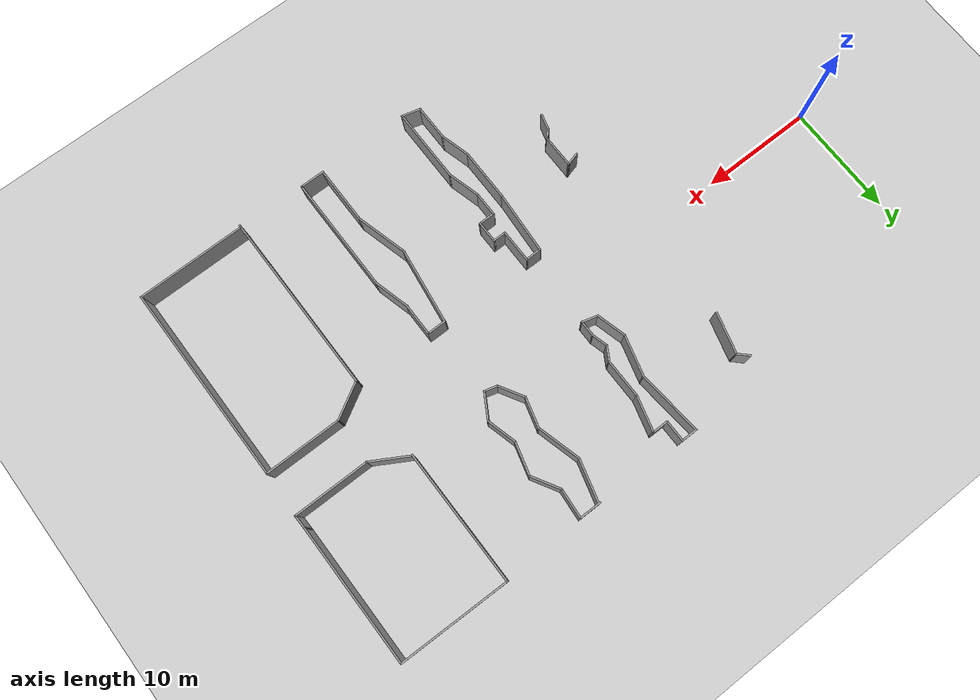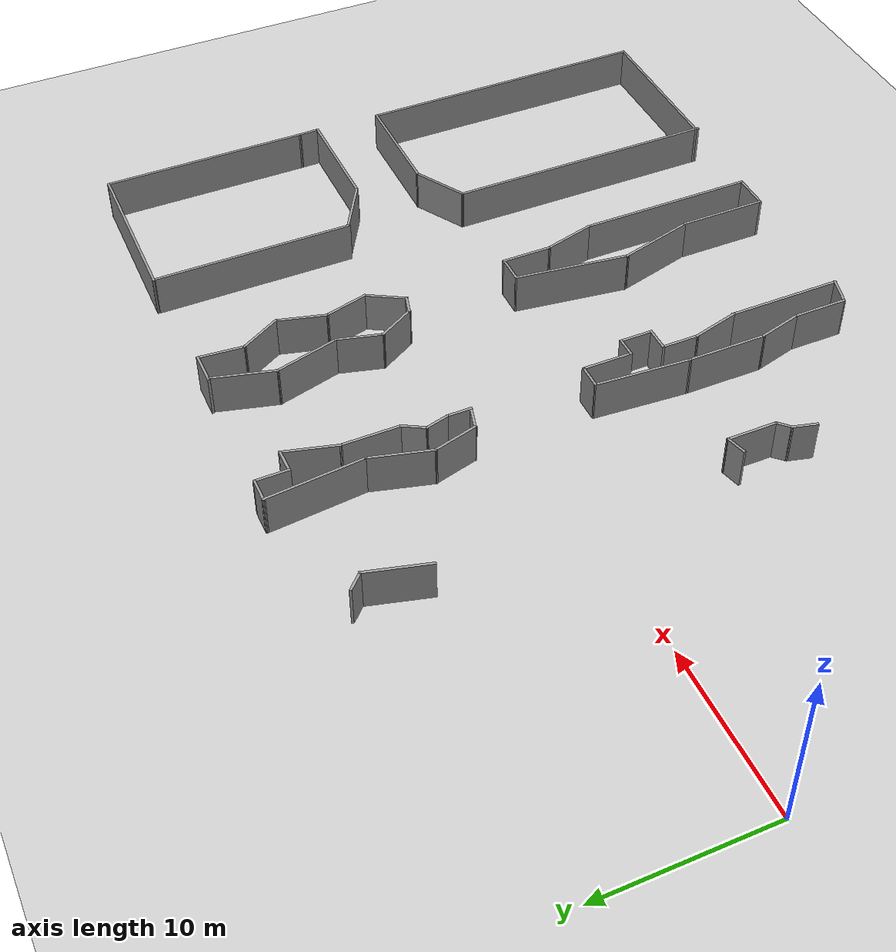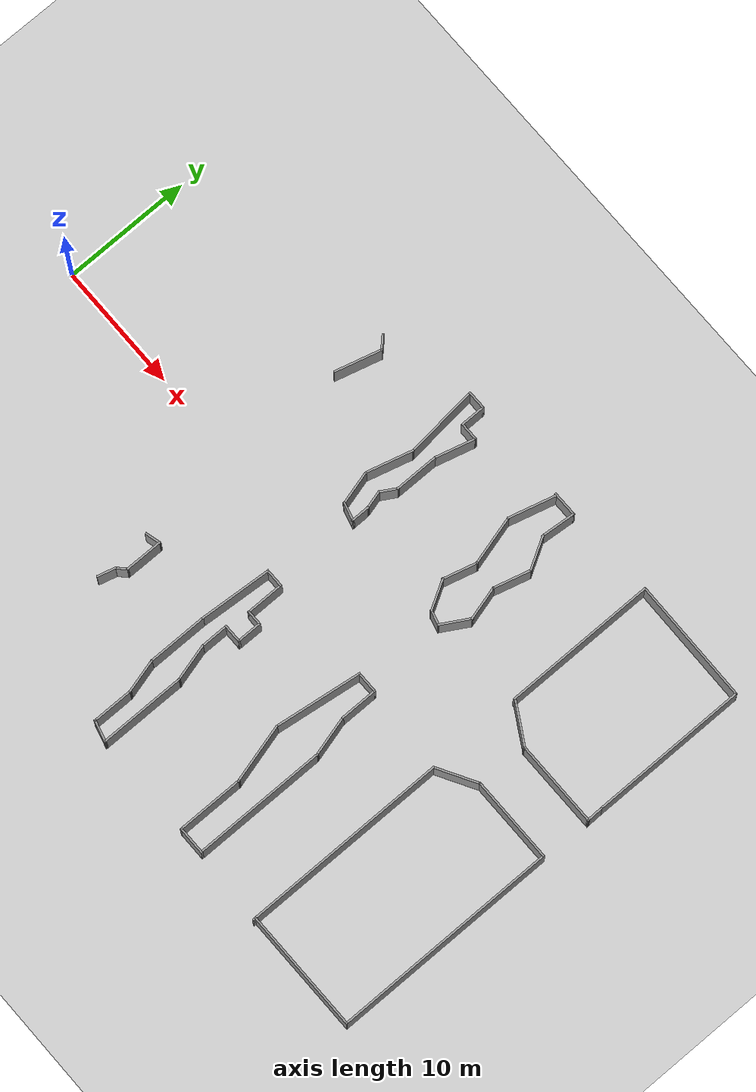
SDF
<sdf version="1.6">
 <world name="default">
  <model name="ground_plane">
   <static>1</static>
   <link name="link">
    <collision name="collision">
     <geometry><plane><normal>0 0 1</normal><size>100 100</size></plane></geometry>
     <surface><friction><ode><mu>100</mu><mu2>50</mu2></ode></friction></surface>
    </collision>
    <visual name="visual">
     <cast_shadows>0</cast_shadows>
     <geometry><plane><normal>0 0 1</normal><size>100 100</size></plane></geometry>
     <material>
      <script><uri>file://media/materials/scripts/gazebo.material</uri><name>Gazebo/Grey</name></script>
     </material>
    </visual>
   </link>
  </model>
  <model name="supermarket">
   <pose>25.0605 -2.27607 0 0 -0 0</pose>
   <link name="Wall_100">
    <collision name="Wall_100_Collision">
     <geometry><box><size>1.5 0.15 2.5</size></box></geometry>
     <pose>0 0 1.25 0 -0 0</pose>
    </collision>
    <visual name="Wall_100_Visual">
     <pose>0 0 1.25 0 -0 0</pose>
     <geometry><box><size>1.5 0.15 2.5</size></box></geometry>
     <material>
      <script><uri>file://media/materials/scripts/gazebo.material</uri><name>Gazebo/Grey</name></script>
      <ambient>1 1 1 1</ambient>
     </material>
     <meta><layer>0</layer></meta>
    </visual>
    <pose>2.20267 -6.05084 0 0 -0 3.14159</pose>
   </link>
   <link name="Wall_101">
    <collision name="Wall_101_Collision">
     <geometry><box><size>2.25 0.15 2.5</size></box></geometry>
     <pose>0 0 1.25 0 -0 0</pose>
    </collision>
    <visual name="Wall_101_Visual">
     <pose>0 0 1.25 0 -0 0</pose>
     <geometry><box><size>2.25 0.15 2.5</size></box></geometry>
     <material>
      <script><uri>file://media/materials/scripts/gazebo.material</uri><name>Gazebo/Grey</name></script>
      <ambient>1 1 1 1</ambient>
     </material>
     <meta><layer>0</layer></meta>
    </visual>
    <pose>1.52767 -7.10084 0 0 0 -1.5708</pose>
   </link>
   <link name="Wall_102">
    <collision name="Wall_102_Collision">
     <geometry><box><size>3 0.15 2.5</size></box></geometry>
     <pose>0 0 1.25 0 -0 0</pose>
    </collision>
    <visual name="Wall_102_Visual">
     <pose>0 0 1.25 0 -0 0</pose>
     <geometry><box><size>3 0.15 2.5</size></box></geometry>
     <material>
      <script><uri>file://media/materials/scripts/gazebo.material</uri><name>Gazebo/Grey</name></script>
      <ambient>1 1 1 1</ambient>
     </material>
     <meta><layer>0</layer></meta>
    </visual>
    <pose>1.89649 -9.52728 0 0 0 -1.309</pose>
   </link>
   <link name="Wall_103">
    <collision name="Wall_103_Collision">
     <geometry><box><size>6.75 0.15 2.5</size></box></geometry>
     <pose>0 0 1.25 0 -0 0</pose>
    </collision>
    <visual name="Wall_103_Visual">
     <pose>0 0 1.25 0 -0 0</pose>
     <geometry><box><size>6.75 0.15 2.5</size></box></geometry>
     <material>
      <script><uri>file://media/materials/scripts/gazebo.material</uri><name>Gazebo/Grey</name></script>
      <ambient>1 1 1 1</ambient>
     </material>
     <meta><layer>0</layer></meta>
    </visual>
    <pose>2.26531 -14.2037 0 0 0 -1.5708</pose>
   </link>
   <link name="Wall_104">
    <collision name="Wall_104_Collision">
     <geometry><box><size>1.75 0.15 2.5</size></box></geometry>
     <pose>0 0 1.25 0 -0 0</pose>
    </collision>
    <visual name="Wall_104_Visual">
     <pose>0 0 1.25 0 -0 0</pose>
     <geometry><box><size>1.75 0.15 2.5</size></box></geometry>
     <material>
      <script><uri>file://media/materials/scripts/gazebo.material</uri><name>Gazebo/Grey</name></script>
      <ambient>1 1 1 1</ambient>
     </material>
     <meta><layer>0</layer></meta>
    </visual>
    <pose>1.49256 -17.2967 0 0 -0 2.87979</pose>
   </link>
   <link name="Wall_105">
    <collision name="Wall_105_Collision">
     <geometry><box><size>3.25 0.15 2.5</size></box></geometry>
     <pose>0 0 1.25 0 -0 0</pose>
    </collision>
    <visual name="Wall_105_Visual">
     <pose>0 0 1.25 0 -0 0</pose>
     <geometry><box><size>3.25 0.15 2.5</size></box></geometry>
     <material>
      <script><uri>file://media/materials/scripts/gazebo.material</uri><name>Gazebo/Grey</name></script>
      <ambient>1 1 1 1</ambient>
     </material>
     <meta><layer>0</layer></meta>
    </visual>
    <pose>0.719824 -15.5396 0 0 -0 1.5708</pose>
   </link>
   <link name="Wall_106">
    <collision name="Wall_106_Collision">
     <geometry><box><size>2.75 0.15 2.5</size></box></geometry>
     <pose>0 0 1.25 0 -0 0</pose>
    </collision>
    <visual name="Wall_106_Visual">
     <pose>0 0 1.25 0 -0 0</pose>
     <geometry><box><size>2.75 0.15 2.5</size></box></geometry>
     <material>
      <script><uri>file://media/materials/scripts/gazebo.material</uri><name>Gazebo/Grey</name></script>
      <ambient>1 1 1 1</ambient>
     </material>
     <meta><layer>0</layer></meta>
    </visual>
    <pose>0.383359 -12.7339 0 0 -0 1.8326</pose>
   </link>
   <link name="Wall_107">
    <collision name="Wall_107_Collision">
     <geometry><box><size>4.75 0.15 2.5</size></box></geometry>
     <pose>0 0 1.25 0 -0 0</pose>
    </collision>
    <visual name="Wall_107_Visual">
     <pose>0 0 1.25 0 -0 0</pose>
     <geometry><box><size>4.75 0.15 2.5</size></box></geometry>
     <material>
      <script><uri>file://media/materials/scripts/gazebo.material</uri><name>Gazebo/Grey</name></script>
      <ambient>1 1 1 1</ambient>
     </material>
     <meta><layer>0</layer></meta>
    </visual>
    <pose>0.046895 -9.17821 0 0 -0 1.5708</pose>
   </link>
   <link name="Wall_108">
    <collision name="Wall_108_Collision">
     <geometry><box><size>5.69047 0.15 2.5</size></box></geometry>
     <pose>0 0 1.25 0 -0 0</pose>
    </collision>
    <visual name="Wall_108_Visual">
     <pose>0 0 1.25 0 -0 0</pose>
     <geometry><box><size>5.69047 0.15 2.5</size></box></geometry>
     <material>
      <script><uri>file://media/materials/scripts/gazebo.material</uri><name>Gazebo/Grey</name></script>
      <ambient>1 1 1 1</ambient>
     </material>
     <meta><layer>0</layer></meta>
    </visual>
    <pose>0.237283 -4.11452 0 0 -0 1.50202</pose>
   </link>
   <link name="Wall_112">
    <collision name="Wall_112_Collision">
     <geometry><box><size>2 0.15 2.5</size></box></geometry>
     <pose>0 0 1.25 0 -0 0</pose>
    </collision>
    <visual name="Wall_112_Visual">
     <pose>0 0 1.25 0 -0 0</pose>
     <geometry><box><size>2 0.15 2.5</size></box></geometry>
     <material>
      <script><uri>file://media/materials/scripts/gazebo.material</uri><name>Gazebo/Grey</name></script>
      <ambient>1 1 1 1</ambient>
     </material>
     <meta><layer>0</layer></meta>
    </visual>
    <pose>10.1554 17.2151 0 0 -0 0</pose>
   </link>
   <link name="Wall_113">
    <collision name="Wall_113_Collision">
     <geometry><box><size>2.68973 0.15 2.5</size></box></geometry>
     <pose>0 0 1.25 0 -0 0</pose>
    </collision>
    <visual name="Wall_113_Visual">
     <pose>0 0 1.25 0 -0 0</pose>
     <geometry><box><size>2.68973 0.15 2.5</size></box></geometry>
     <material>
      <script><uri>file://media/materials/scripts/gazebo.material</uri><name>Gazebo/Grey</name></script>
      <ambient>1 1 1 1</ambient>
     </material>
     <meta><layer>0</layer></meta>
    </visual>
    <pose>10.974 15.8965 0 0 0 -1.65468</pose>
   </link>
   <link name="Wall_114">
    <collision name="Wall_114_Collision">
     <geometry><box><size>2.75 0.15 2.5</size></box></geometry>
     <pose>0 0 1.25 0 -0 0</pose>
    </collision>
    <visual name="Wall_114_Visual">
     <pose>0 0 1.25 0 -0 0</pose>
     <geometry><box><size>2.75 0.15 2.5</size></box></geometry>
     <material>
      <script><uri>file://media/materials/scripts/gazebo.material</uri><name>Gazebo/Grey</name></script>
      <ambient>1 1 1 1</ambient>
     </material>
     <meta><layer>0</layer></meta>
    </visual>
    <pose>11.5176 13.5053 0 0 0 -1.0472</pose>
   </link>
   <link name="Wall_115">
    <collision name="Wall_115_Collision">
     <geometry><box><size>3 0.15 2.5</size></box></geometry>
     <pose>0 0 1.25 0 -0 0</pose>
    </collision>
    <visual name="Wall_115_Visual">
     <pose>0 0 1.25 0 -0 0</pose>
     <geometry><box><size>3 0.15 2.5</size></box></geometry>
     <material>
      <script><uri>file://media/materials/scripts/gazebo.material</uri><name>Gazebo/Grey</name></script>
      <ambient>1 1 1 1</ambient>
     </material>
     <meta><layer>0</layer></meta>
    </visual>
    <pose>11.7988 11.003 0 0 0 -1.8326</pose>
   </link>
   <link name="Wall_116">
    <collision name="Wall_116_Collision">
     <geometry><box><size>2.75 0.15 2.5</size></box></geometry>
     <pose>0 0 1.25 0 -0 0</pose>
    </collision>
    <visual name="Wall_116_Visual">
     <pose>0 0 1.25 0 -0 0</pose>
     <geometry><box><size>2.75 0.15 2.5</size></box></geometry>
     <material>
      <script><uri>file://media/materials/scripts/gazebo.material</uri><name>Gazebo/Grey</name></script>
      <ambient>1 1 1 1</ambient>
     </material>
     <meta><layer>0</layer></meta>
    </visual>
    <pose>11.7664 8.37086 0 0 0 -1.309</pose>
   </link>
   <link name="Wall_117">
    <collision name="Wall_117_Collision">
     <geometry><box><size>2.5 0.15 2.5</size></box></geometry>
     <pose>0 0 1.25 0 -0 0</pose>
    </collision>
    <visual name="Wall_117_Visual">
     <pose>0 0 1.25 0 -0 0</pose>
     <geometry><box><size>2.5 0.15 2.5</size></box></geometry>
     <material>
      <script><uri>file://media/materials/scripts/gazebo.material</uri><name>Gazebo/Grey</name></script>
      <ambient>1 1 1 1</ambient>
     </material>
     <meta><layer>0</layer></meta>
    </visual>
    <pose>11.5154 6.09758 0 0 0 -2.0944</pose>
   </link>
   <link name="Wall_118">
    <collision name="Wall_118_Collision">
     <geometry><box><size>1.25 0.15 2.5</size></box></geometry>
     <pose>0 0 1.25 0 -0 0</pose>
    </collision>
    <visual name="Wall_118_Visual">
     <pose>0 0 1.25 0 -0 0</pose>
     <geometry><box><size>1.25 0.15 2.5</size></box></geometry>
     <material>
      <script><uri>file://media/materials/scripts/gazebo.material</uri><name>Gazebo/Grey</name></script>
      <ambient>1 1 1 1</ambient>
     </material>
     <meta><layer>0</layer></meta>
    </visual>
    <pose>10.3966 5.22235 0 0 -0 2.87979</pose>
   </link>
   <link name="Wall_119">
    <collision name="Wall_119_Collision">
     <geometry><box><size>2.5 0.15 2.5</size></box></geometry>
     <pose>0 0 1.25 0 -0 0</pose>
    </collision>
    <visual name="Wall_119_Visual">
     <pose>0 0 1.25 0 -0 0</pose>
     <geometry><box><size>2.5 0.15 2.5</size></box></geometry>
     <material>
      <script><uri>file://media/materials/scripts/gazebo.material</uri><name>Gazebo/Grey</name></script>
      <ambient>1 1 1 1</ambient>
     </material>
     <meta><layer>0</layer></meta>
    </visual>
    <pose>9.27785 6.38228 0 0 -0 2.0944</pose>
   </link>
   <link name="Wall_120">
    <collision name="Wall_120_Collision">
     <geometry><box><size>2.75 0.15 2.5</size></box></geometry>
     <pose>0 0 1.25 0 -0 0</pose>
    </collision>
    <visual name="Wall_120_Visual">
     <pose>0 0 1.25 0 -0 0</pose>
     <geometry><box><size>2.75 0.15 2.5</size></box></geometry>
     <material>
      <script><uri>file://media/materials/scripts/gazebo.material</uri><name>Gazebo/Grey</name></script>
      <ambient>1 1 1 1</ambient>
     </material>
     <meta><layer>0</layer></meta>
    </visual>
    <pose>9.02682 8.65556 0 0 -0 1.309</pose>
   </link>
   <link name="Wall_121">
    <collision name="Wall_121_Collision">
     <geometry><box><size>4 0.15 2.5</size></box></geometry>
     <pose>0 0 1.25 0 -0 0</pose>
    </collision>
    <visual name="Wall_121_Visual">
     <pose>0 0 1.25 0 -0 0</pose>
     <geometry><box><size>4 0.15 2.5</size></box></geometry>
     <material>
      <script><uri>file://media/materials/scripts/gazebo.material</uri><name>Gazebo/Grey</name></script>
      <ambient>1 1 1 1</ambient>
     </material>
     <meta><layer>0</layer></meta>
    </visual>
    <pose>8.86506 11.7707 0 0 -0 1.8326</pose>
   </link>
   <link name="Wall_122">
    <collision name="Wall_122_Collision">
     <geometry><box><size>3.75 0.15 2.5</size></box></geometry>
     <pose>0 0 1.25 0 -0 0</pose>
    </collision>
    <visual name="Wall_122_Visual">
     <pose>0 0 1.25 0 -0 0</pose>
     <geometry><box><size>3.75 0.15 2.5</size></box></geometry>
     <material>
      <script><uri>file://media/materials/scripts/gazebo.material</uri><name>Gazebo/Grey</name></script>
      <ambient>1 1 1 1</ambient>
     </material>
     <meta><layer>0</layer></meta>
    </visual>
    <pose>8.83271 15.3687 0 0 -0 1.309</pose>
   </link>
   <link name="Wall_124">
    <collision name="Wall_124_Collision">
     <geometry><box><size>1.75 0.15 2.5</size></box></geometry>
     <pose>0 0 1.25 0 -0 0</pose>
    </collision>
    <visual name="Wall_124_Visual">
     <pose>0 0 1.25 0 -0 0</pose>
     <geometry><box><size>1.75 0.15 2.5</size></box></geometry>
     <material>
      <script><uri>file://media/materials/scripts/gazebo.material</uri><name>Gazebo/Grey</name></script>
      <ambient>1 1 1 1</ambient>
     </material>
     <meta><layer>0</layer></meta>
    </visual>
    <pose>10.7924 -1.2652 0 0 -0 0</pose>
   </link>
   <link name="Wall_125">
    <collision name="Wall_125_Collision">
     <geometry><box><size>3 0.15 2.5</size></box></geometry>
     <pose>0 0 1.25 0 -0 0</pose>
    </collision>
    <visual name="Wall_125_Visual">
     <pose>0 0 1.25 0 -0 0</pose>
     <geometry><box><size>3 0.15 2.5</size></box></geometry>
     <material>
      <script><uri>file://media/materials/scripts/gazebo.material</uri><name>Gazebo/Grey</name></script>
      <ambient>1 1 1 1</ambient>
     </material>
     <meta><layer>0</layer></meta>
    </visual>
    <pose>11.5924 -2.6902 0 0 0 -1.5708</pose>
   </link>
   <link name="Wall_126">
    <collision name="Wall_126_Collision">
     <geometry><box><size>3.25 0.15 2.5</size></box></geometry>
     <pose>0 0 1.25 0 -0 0</pose>
    </collision>
    <visual name="Wall_126_Visual">
     <pose>0 0 1.25 0 -0 0</pose>
     <geometry><box><size>3.25 0.15 2.5</size></box></geometry>
     <material>
      <script><uri>file://media/materials/scripts/gazebo.material</uri><name>Gazebo/Grey</name></script>
      <ambient>1 1 1 1</ambient>
     </material>
     <meta><layer>0</layer></meta>
    </visual>
    <pose>11.9935 -5.61238 0 0 0 -1.309</pose>
   </link>
   <link name="Wall_127">
    <collision name="Wall_127_Collision">
     <geometry><box><size>10.5 0.15 2.5</size></box></geometry>
     <pose>0 0 1.25 0 -0 0</pose>
    </collision>
    <visual name="Wall_127_Visual">
     <pose>0 0 1.25 0 -0 0</pose>
     <geometry><box><size>10.5 0.15 2.5</size></box></geometry>
     <material>
      <script><uri>file://media/materials/scripts/gazebo.material</uri><name>Gazebo/Grey</name></script>
      <ambient>1 1 1 1</ambient>
     </material>
     <meta><layer>0</layer></meta>
    </visual>
    <pose>12.3947 -12.2846 0 0 0 -1.5708</pose>
   </link>
   <link name="Wall_128">
    <collision name="Wall_128_Collision">
     <geometry><box><size>2.25 0.15 2.5</size></box></geometry>
     <pose>0 0 1.25 0 -0 0</pose>
    </collision>
    <visual name="Wall_128_Visual">
     <pose>0 0 1.25 0 -0 0</pose>
     <geometry><box><size>2.25 0.15 2.5</size></box></geometry>
     <material>
      <script><uri>file://media/materials/scripts/gazebo.material</uri><name>Gazebo/Grey</name></script>
      <ambient>1 1 1 1</ambient>
     </material>
     <meta><layer>0</layer></meta>
    </visual>
    <pose>11.3447 -17.4596 0 0 -0 3.14159</pose>
   </link>
   <link name="Wall_129">
    <collision name="Wall_129_Collision">
     <geometry><box><size>5.25 0.15 2.5</size></box></geometry>
     <pose>0 0 1.25 0 -0 0</pose>
    </collision>
    <visual name="Wall_129_Visual">
     <pose>0 0 1.25 0 -0 0</pose>
     <geometry><box><size>5.25 0.15 2.5</size></box></geometry>
     <material>
      <script><uri>file://media/materials/scripts/gazebo.material</uri><name>Gazebo/Grey</name></script>
      <ambient>1 1 1 1</ambient>
     </material>
     <meta><layer>0</layer></meta>
    </visual>
    <pose>10.2947 -14.9096 0 0 -0 1.5708</pose>
   </link>
   <link name="Wall_130">
    <collision name="Wall_130_Collision">
     <geometry><box><size>4.75 0.15 2.5</size></box></geometry>
     <pose>0 0 1.25 0 -0 0</pose>
    </collision>
    <visual name="Wall_130_Visual">
     <pose>0 0 1.25 0 -0 0</pose>
     <geometry><box><size>4.75 0.15 2.5</size></box></geometry>
     <material>
      <script><uri>file://media/materials/scripts/gazebo.material</uri><name>Gazebo/Grey</name></script>
      <ambient>1 1 1 1</ambient>
     </material>
     <meta><layer>0</layer></meta>
    </visual>
    <pose>9.69942 -10.1379 0 0 -0 1.8326</pose>
   </link>
   <link name="Wall_131">
    <collision name="Wall_131_Collision">
     <geometry><box><size>6.86016 0.15 2.5</size></box></geometry>
     <pose>0 0 1.25 0 -0 0</pose>
    </collision>
    <visual name="Wall_131_Visual">
     <pose>0 0 1.25 0 -0 0</pose>
     <geometry><box><size>6.86016 0.15 2.5</size></box></geometry>
     <material>
      <script><uri>file://media/materials/scripts/gazebo.material</uri><name>Gazebo/Grey</name></script>
      <ambient>1 1 1 1</ambient>
     </material>
     <meta><layer>0</layer></meta>
    </visual>
    <pose>9.54825 -4.59075 0 0 -0 1.43804</pose>
   </link>
   <link name="Wall_135">
    <collision name="Wall_135_Collision">
     <geometry><box><size>12.3776 0.15 2.5</size></box></geometry>
     <pose>0 0 1.25 0 -0 0</pose>
    </collision>
    <visual name="Wall_135_Visual">
     <pose>0 0 1.25 0 -0 0</pose>
     <geometry><box><size>12.3776 0.15 2.5</size></box></geometry>
     <material>
      <script><uri>file://media/materials/scripts/gazebo.material</uri><name>Gazebo/Grey</name></script>
      <ambient>1 1 1 1</ambient>
     </material>
     <meta><layer>0</layer></meta>
    </visual>
    <pose>27.8396 11.2672 0 0 -0 1.5708</pose>
   </link>
   <link name="Wall_136">
    <collision name="Wall_136_Collision">
     <geometry><box><size>9.75 0.15 2.5</size></box></geometry>
     <pose>0 0 1.25 0 -0 0</pose>
    </collision>
    <visual name="Wall_136_Visual">
     <pose>0 0 1.25 0 -0 0</pose>
     <geometry><box><size>9.75 0.15 2.5</size></box></geometry>
     <material>
      <script><uri>file://media/materials/scripts/gazebo.material</uri><name>Gazebo/Grey</name></script>
      <ambient>1 1 1 1</ambient>
     </material>
     <meta><layer>0</layer></meta>
    </visual>
    <pose>23.0396 17.4422 0 0 -0 3.12885</pose>
   </link>
   <link name="Wall_140">
    <collision name="Wall_140_Collision">
     <geometry><box><size>3.5 0.15 2.5</size></box></geometry>
     <pose>0 0 1.25 0 -0 0</pose>
    </collision>
    <visual name="Wall_140_Visual">
     <pose>0 0 1.25 0 -0 0</pose>
     <geometry><box><size>3.5 0.15 2.5</size></box></geometry>
     <material>
      <script><uri>file://media/materials/scripts/gazebo.material</uri><name>Gazebo/Grey</name></script>
      <ambient>1 1 1 1</ambient>
     </material>
     <meta><layer>0</layer></meta>
    </visual>
    <pose>19.8164 4.79323 0 0 0 -0.523599</pose>
   </link>
   <link name="Wall_141">
    <collision name="Wall_141_Collision">
     <geometry><box><size>6.75 0.15 2.5</size></box></geometry>
     <pose>0 0 1.25 0 -0 0</pose>
    </collision>
    <visual name="Wall_141_Visual">
     <pose>0 0 1.25 0 -0 0</pose>
     <geometry><box><size>6.75 0.15 2.5</size></box></geometry>
     <material>
      <script><uri>file://media/materials/scripts/gazebo.material</uri><name>Gazebo/Grey</name></script>
      <ambient>1 1 1 1</ambient>
     </material>
     <meta><layer>0</layer></meta>
    </visual>
    <pose>24.567 3.95573 0 0 -0 0</pose>
   </link>
   <link name="Wall_142">
    <collision name="Wall_142_Collision">
     <geometry><box><size>1.348 0.15 2.5</size></box></geometry>
     <pose>0 0 1.25 0 -0 0</pose>
    </collision>
    <visual name="Wall_142_Visual">
     <pose>0 0 1.25 0 -0 0</pose>
     <geometry><box><size>1.348 0.15 2.5</size></box></geometry>
     <material>
      <script><uri>file://media/materials/scripts/gazebo.material</uri><name>Gazebo/Grey</name></script>
      <ambient>1 1 1 1</ambient>
     </material>
     <meta><layer>0</layer></meta>
    </visual>
    <pose>27.8533 4.55457 0 0 -0 1.59368</pose>
   </link>
   <link name="Wall_144">
    <collision name="Wall_144_Collision">
     <geometry><box><size>3.5 0.15 2.5</size></box></geometry>
     <pose>0 0 1.25 0 -0 0</pose>
    </collision>
    <visual name="Wall_144_Visual">
     <pose>0 0 1.25 0 -0 0</pose>
     <geometry><box><size>3.5 0.15 2.5</size></box></geometry>
     <material>
      <script><uri>file://media/materials/scripts/gazebo.material</uri><name>Gazebo/Grey</name></script>
      <ambient>1 1 1 1</ambient>
     </material>
     <meta><layer>0</layer></meta>
    </visual>
    <pose>19.6941 -0.812247 0 0 -0 0.523599</pose>
   </link>
   <link name="Wall_145">
    <collision name="Wall_145_Collision">
     <geometry><box><size>6.75 0.15 2.5</size></box></geometry>
     <pose>0 0 1.25 0 -0 0</pose>
    </collision>
    <visual name="Wall_145_Visual">
     <pose>0 0 1.25 0 -0 0</pose>
     <geometry><box><size>6.75 0.15 2.5</size></box></geometry>
     <material>
      <script><uri>file://media/materials/scripts/gazebo.material</uri><name>Gazebo/Grey</name></script>
      <ambient>1 1 1 1</ambient>
     </material>
     <meta><layer>0</layer></meta>
    </visual>
    <pose>24.4447 0.025253 0 0 -0 0</pose>
   </link>
   <link name="Wall_146">
    <collision name="Wall_146_Collision">
     <geometry><box><size>17.75 0.15 2.5</size></box></geometry>
     <pose>0 0 1.25 0 -0 0</pose>
    </collision>
    <visual name="Wall_146_Visual">
     <pose>0 0 1.25 0 -0 0</pose>
     <geometry><box><size>17.75 0.15 2.5</size></box></geometry>
     <material>
      <script><uri>file://media/materials/scripts/gazebo.material</uri><name>Gazebo/Grey</name></script>
      <ambient>1 1 1 1</ambient>
     </material>
     <meta><layer>0</layer></meta>
    </visual>
    <pose>27.7447 -8.77475 0 0 0 -1.5708</pose>
   </link>
   <link name="Wall_147">
    <collision name="Wall_147_Collision">
     <geometry><box><size>9.65508 0.15 2.5</size></box></geometry>
     <pose>0 0 1.25 0 -0 0</pose>
    </collision>
    <visual name="Wall_147_Visual">
     <pose>0 0 1.25 0 -0 0</pose>
     <geometry><box><size>9.65508 0.15 2.5</size></box></geometry>
     <material>
      <script><uri>file://media/materials/scripts/gazebo.material</uri><name>Gazebo/Grey</name></script>
      <ambient>1 1 1 1</ambient>
     </material>
     <meta><layer>0</layer></meta>
    </visual>
    <pose>22.9921 -17.5857 0 0 0 -3.1393</pose>
   </link>
   <link name="Wall_149">
    <collision name="Wall_149_Collision">
     <geometry><box><size>12 0.15 2.5</size></box></geometry>
     <pose>0 0 1.25 0 -0 0</pose>
    </collision>
    <visual name="Wall_149_Visual">
     <pose>0 0 1.25 0 -0 0</pose>
     <geometry><box><size>12 0.15 2.5</size></box></geometry>
     <material>
      <script><uri>file://media/materials/scripts/gazebo.material</uri><name>Gazebo/Grey</name></script>
      <ambient>1 1 1 1</ambient>
     </material>
     <meta><layer>0</layer></meta>
    </visual>
    <pose>18.2396 11.5784 0 0 0 -1.5708</pose>
   </link>
   <link name="Wall_151">
    <collision name="Wall_151_Collision">
     <geometry><box><size>16.25 0.15 2.5</size></box></geometry>
     <pose>0 0 1.25 0 -0 0</pose>
    </collision>
    <visual name="Wall_151_Visual">
     <pose>0 0 1.25 0 -0 0</pose>
     <geometry><box><size>16.25 0.15 2.5</size></box></geometry>
     <material>
      <script><uri>file://media/materials/scripts/gazebo.material</uri><name>Gazebo/Grey</name></script>
      <ambient>1 1 1 1</ambient>
     </material>
     <meta><layer>0</layer></meta>
    </visual>
    <pose>18.2435 -9.69975 0 0 0 -1.5708</pose>
   </link>
   <link name="Wall_19">
    <collision name="Wall_19_Collision">
     <geometry><box><size>1.25 0.15 2.5</size></box></geometry>
     <pose>0 0 1.25 0 -0 0</pose>
    </collision>
    <visual name="Wall_19_Visual">
     <pose>0 0 1.25 0 -0 0</pose>
     <geometry><box><size>1.25 0.15 2.5</size></box></geometry>
     <material>
      <script><uri>file://media/materials/scripts/gazebo.material</uri><name>Gazebo/Grey</name></script>
      <ambient>1 1 1 1</ambient>
     </material>
     <meta><layer>0</layer></meta>
    </visual>
    <pose>-6.77902 15.174 0 0 0 -0.785398</pose>
   </link>
   <link name="Wall_20">
    <collision name="Wall_20_Collision">
     <geometry><box><size>3.75 0.15 2.5</size></box></geometry>
     <pose>0 0 1.25 0 -0 0</pose>
    </collision>
    <visual name="Wall_20_Visual">
     <pose>0 0 1.25 0 -0 0</pose>
     <geometry><box><size>3.75 0.15 2.5</size></box></geometry>
     <material>
      <script><uri>file://media/materials/scripts/gazebo.material</uri><name>Gazebo/Grey</name></script>
      <ambient>1 1 1 1</ambient>
     </material>
     <meta><layer>0</layer></meta>
    </visual>
    <pose>-6.85598 13.0464 0 0 0 -1.8326</pose>
   </link>
   <link name="Wall_71">
    <collision name="Wall_71_Collision">
     <geometry><box><size>1.25 0.15 2.5</size></box></geometry>
     <pose>0 0 1.25 0 -0 0</pose>
    </collision>
    <visual name="Wall_71_Visual">
     <pose>0 0 1.25 0 -0 0</pose>
     <geometry><box><size>1.25 0.15 2.5</size></box></geometry>
     <material>
      <script><uri>file://media/materials/scripts/gazebo.material</uri><name>Gazebo/Grey</name></script>
      <ambient>1 1 1 1</ambient>
     </material>
     <meta><layer>0</layer></meta>
    </visual>
    <pose>-6.48059 -5.86322 0 0 -0 0.261799</pose>
   </link>
   <link name="Wall_72">
    <collision name="Wall_72_Collision">
     <geometry><box><size>3 0.15 2.5</size></box></geometry>
     <pose>0 0 1.25 0 -0 0</pose>
    </collision>
    <visual name="Wall_72_Visual">
     <pose>0 0 1.25 0 -0 0</pose>
     <geometry><box><size>3 0.15 2.5</size></box></geometry>
     <material>
      <script><uri>file://media/materials/scripts/gazebo.material</uri><name>Gazebo/Grey</name></script>
      <ambient>1 1 1 1</ambient>
     </material>
     <meta><layer>0</layer></meta>
    </visual>
    <pose>-5.94933 -7.14587 0 0 0 -1.5708</pose>
   </link>
   <link name="Wall_73">
    <collision name="Wall_73_Collision">
     <geometry><box><size>1 0.15 2.5</size></box></geometry>
     <pose>0 0 1.25 0 -0 0</pose>
    </collision>
    <visual name="Wall_73_Visual">
     <pose>0 0 1.25 0 -0 0</pose>
     <geometry><box><size>1 0.15 2.5</size></box></geometry>
     <material>
      <script><uri>file://media/materials/scripts/gazebo.material</uri><name>Gazebo/Grey</name></script>
      <ambient>1 1 1 1</ambient>
     </material>
     <meta><layer>0</layer></meta>
    </visual>
    <pose>-6.24986 -8.87139 0 0 0 -2.35619</pose>
   </link>
   <link name="Wall_74">
    <collision name="Wall_74_Collision">
     <geometry><box><size>1.5 0.15 2.5</size></box></geometry>
     <pose>0 0 1.25 0 -0 0</pose>
    </collision>
    <visual name="Wall_74_Visual">
     <pose>0 0 1.25 0 -0 0</pose>
     <geometry><box><size>1.5 0.15 2.5</size></box></geometry>
     <material>
      <script><uri>file://media/materials/scripts/gazebo.material</uri><name>Gazebo/Grey</name></script>
      <ambient>1 1 1 1</ambient>
     </material>
     <meta><layer>0</layer></meta>
    </visual>
    <pose>-6.72508 -9.82391 0 0 0 -1.8326</pose>
   </link>
   <link name="Wall_82">
    <collision name="Wall_82_Collision">
     <geometry><box><size>1.5 0.15 2.5</size></box></geometry>
     <pose>0 0 1.25 0 -0 0</pose>
    </collision>
    <visual name="Wall_82_Visual">
     <pose>0 0 1.25 0 -0 0</pose>
     <geometry><box><size>1.5 0.15 2.5</size></box></geometry>
     <material>
      <script><uri>file://media/materials/scripts/gazebo.material</uri><name>Gazebo/Grey</name></script>
      <ambient>1 1 1 1</ambient>
     </material>
     <meta><layer>0</layer></meta>
    </visual>
    <pose>0.617204 17.4205 0 0 -0 0</pose>
   </link>
   <link name="Wall_83">
    <collision name="Wall_83_Collision">
     <geometry><box><size>2 0.15 2.5</size></box></geometry>
     <pose>0 0 1.25 0 -0 0</pose>
    </collision>
    <visual name="Wall_83_Visual">
     <pose>0 0 1.25 0 -0 0</pose>
     <geometry><box><size>2 0.15 2.5</size></box></geometry>
     <material>
      <script><uri>file://media/materials/scripts/gazebo.material</uri><name>Gazebo/Grey</name></script>
      <ambient>1 1 1 1</ambient>
     </material>
     <meta><layer>0</layer></meta>
    </visual>
    <pose>1.2922 16.4956 0 0 0 -1.5708</pose>
   </link>
   <link name="Wall_84">
    <collision name="Wall_84_Collision">
     <geometry><box><size>1.5 0.15 2.5</size></box></geometry>
     <pose>0 0 1.25 0 -0 0</pose>
    </collision>
    <visual name="Wall_84_Visual">
     <pose>0 0 1.25 0 -0 0</pose>
     <geometry><box><size>1.5 0.15 2.5</size></box></geometry>
     <material>
      <script><uri>file://media/materials/scripts/gazebo.material</uri><name>Gazebo/Grey</name></script>
      <ambient>1 1 1 1</ambient>
     </material>
     <meta><layer>0</layer></meta>
    </visual>
    <pose>1.96721 15.5705 0 0 -0 0</pose>
   </link>
   <link name="Wall_85">
    <collision name="Wall_85_Collision">
     <geometry><box><size>3.25 0.15 2.5</size></box></geometry>
     <pose>0 0 1.25 0 -0 0</pose>
    </collision>
    <visual name="Wall_85_Visual">
     <pose>0 0 1.25 0 -0 0</pose>
     <geometry><box><size>3.25 0.15 2.5</size></box></geometry>
     <material>
      <script><uri>file://media/materials/scripts/gazebo.material</uri><name>Gazebo/Grey</name></script>
      <ambient>1 1 1 1</ambient>
     </material>
     <meta><layer>0</layer></meta>
    </visual>
    <pose>2.24104 14.0734 0 0 0 -1.8326</pose>
   </link>
   <link name="Wall_86">
    <collision name="Wall_86_Collision">
     <geometry><box><size>3.5 0.15 2.5</size></box></geometry>
     <pose>0 0 1.25 0 -0 0</pose>
    </collision>
    <visual name="Wall_86_Visual">
     <pose>0 0 1.25 0 -0 0</pose>
     <geometry><box><size>3.5 0.15 2.5</size></box></geometry>
     <material>
      <script><uri>file://media/materials/scripts/gazebo.material</uri><name>Gazebo/Grey</name></script>
      <ambient>1 1 1 1</ambient>
     </material>
     <meta><layer>0</layer></meta>
    </visual>
    <pose>1.83987 10.9012 0 0 0 -1.5708</pose>
   </link>
   <link name="Wall_87">
    <collision name="Wall_87_Collision">
     <geometry><box><size>1.5 0.15 2.5</size></box></geometry>
     <pose>0 0 1.25 0 -0 0</pose>
    </collision>
    <visual name="Wall_87_Visual">
     <pose>0 0 1.25 0 -0 0</pose>
     <geometry><box><size>1.5 0.15 2.5</size></box></geometry>
     <material>
      <script><uri>file://media/materials/scripts/gazebo.material</uri><name>Gazebo/Grey</name></script>
      <ambient>1 1 1 1</ambient>
     </material>
     <meta><layer>0</layer></meta>
    </visual>
    <pose>1.50237 8.64161 0 0 0 -2.0944</pose>
   </link>
   <link name="Wall_88">
    <collision name="Wall_88_Collision">
     <geometry><box><size>1.5 0.15 2.5</size></box></geometry>
     <pose>0 0 1.25 0 -0 0</pose>
    </collision>
    <visual name="Wall_88_Visual">
     <pose>0 0 1.25 0 -0 0</pose>
     <geometry><box><size>1.5 0.15 2.5</size></box></geometry>
     <material>
      <script><uri>file://media/materials/scripts/gazebo.material</uri><name>Gazebo/Grey</name></script>
      <ambient>1 1 1 1</ambient>
     </material>
     <meta><layer>0</layer></meta>
    </visual>
    <pose>1.33957 7.40505 0 0 0 -1.309</pose>
   </link>
   <link name="Wall_89">
    <collision name="Wall_89_Collision">
     <geometry><box><size>1.5 0.15 2.5</size></box></geometry>
     <pose>0 0 1.25 0 -0 0</pose>
    </collision>
    <visual name="Wall_89_Visual">
     <pose>0 0 1.25 0 -0 0</pose>
     <geometry><box><size>1.5 0.15 2.5</size></box></geometry>
     <material>
      <script><uri>file://media/materials/scripts/gazebo.material</uri><name>Gazebo/Grey</name></script>
      <ambient>1 1 1 1</ambient>
     </material>
     <meta><layer>0</layer></meta>
    </visual>
    <pose>1.51427 6.07805 0 0 0 -1.5708</pose>
   </link>
   <link name="Wall_90">
    <collision name="Wall_90_Collision">
     <geometry><box><size>1.5 0.15 2.5</size></box></geometry>
     <pose>0 0 1.25 0 -0 0</pose>
    </collision>
    <visual name="Wall_90_Visual">
     <pose>0 0 1.25 0 -0 0</pose>
     <geometry><box><size>1.5 0.15 2.5</size></box></geometry>
     <material>
      <script><uri>file://media/materials/scripts/gazebo.material</uri><name>Gazebo/Grey</name></script>
      <ambient>1 1 1 1</ambient>
     </material>
     <meta><layer>0</layer></meta>
    </visual>
    <pose>0.862271 5.57775 0 0 -0 2.87979</pose>
   </link>
   <link name="Wall_91">
    <collision name="Wall_91_Collision">
     <geometry><box><size>2.75 0.15 2.5</size></box></geometry>
     <pose>0 0 1.25 0 -0 0</pose>
    </collision>
    <visual name="Wall_91_Visual">
     <pose>0 0 1.25 0 -0 0</pose>
     <geometry><box><size>2.75 0.15 2.5</size></box></geometry>
     <material>
      <script><uri>file://media/materials/scripts/gazebo.material</uri><name>Gazebo/Grey</name></script>
      <ambient>1 1 1 1</ambient>
     </material>
     <meta><layer>0</layer></meta>
    </visual>
    <pose>-0.126194 7.00816 0 0 -0 1.8326</pose>
   </link>
   <link name="Wall_92">
    <collision name="Wall_92_Collision">
     <geometry><box><size>3.75 0.15 2.5</size></box></geometry>
     <pose>0 0 1.25 0 -0 0</pose>
    </collision>
    <visual name="Wall_92_Visual">
     <pose>0 0 1.25 0 -0 0</pose>
     <geometry><box><size>3.75 0.15 2.5</size></box></geometry>
     <material>
      <script><uri>file://media/materials/scripts/gazebo.material</uri><name>Gazebo/Grey</name></script>
      <ambient>1 1 1 1</ambient>
     </material>
     <meta><layer>0</layer></meta>
    </visual>
    <pose>0.003216 10.0025 0 0 -0 1.309</pose>
   </link>
   <link name="Wall_93">
    <collision name="Wall_93_Collision">
     <geometry><box><size>5.85375 0.15 2.5</size></box></geometry>
     <pose>0 0 1.25 0 -0 0</pose>
    </collision>
    <visual name="Wall_93_Visual">
     <pose>0 0 1.25 0 -0 0</pose>
     <geometry><box><size>5.85375 0.15 2.5</size></box></geometry>
     <material>
      <script><uri>file://media/materials/scripts/gazebo.material</uri><name>Gazebo/Grey</name></script>
      <ambient>1 1 1 1</ambient>
     </material>
     <meta><layer>0</layer></meta>
    </visual>
    <pose>0.205647 14.5809 0 0 -0 1.6633</pose>
   </link>
   <link name="Wall_96">
    <collision name="Wall_96_Collision">
     <geometry><box><size>1.5 0.15 2.5</size></box></geometry>
     <pose>0 0 1.25 0 -0 0</pose>
    </collision>
    <visual name="Wall_96_Visual">
     <pose>0 0 1.25 0 -0 0</pose>
     <geometry><box><size>1.5 0.15 2.5</size></box></geometry>
     <material>
      <script><uri>file://media/materials/scripts/gazebo.material</uri><name>Gazebo/Grey</name></script>
      <ambient>1 1 1 1</ambient>
     </material>
     <meta><layer>0</layer></meta>
    </visual>
    <pose>1.10267 -1.35084 0 0 -0 0</pose>
   </link>
   <link name="Wall_97">
    <collision name="Wall_97_Collision">
     <geometry><box><size>3 0.15 2.5</size></box></geometry>
     <pose>0 0 1.25 0 -0 0</pose>
    </collision>
    <visual name="Wall_97_Visual">
     <pose>0 0 1.25 0 -0 0</pose>
     <geometry><box><size>3 0.15 2.5</size></box></geometry>
     <material>
      <script><uri>file://media/materials/scripts/gazebo.material</uri><name>Gazebo/Grey</name></script>
      <ambient>1 1 1 1</ambient>
     </material>
     <meta><layer>0</layer></meta>
    </visual>
    <pose>1.77767 -2.77584 0 0 0 -1.5708</pose>
   </link>
   <link name="Wall_98">
    <collision name="Wall_98_Collision">
     <geometry><box><size>1.25 0.15 2.5</size></box></geometry>
     <pose>0 0 1.25 0 -0 0</pose>
    </collision>
    <visual name="Wall_98_Visual">
     <pose>0 0 1.25 0 -0 0</pose>
     <geometry><box><size>1.25 0.15 2.5</size></box></geometry>
     <material>
      <script><uri>file://media/materials/scripts/gazebo.material</uri><name>Gazebo/Grey</name></script>
      <ambient>1 1 1 1</ambient>
     </material>
     <meta><layer>0</layer></meta>
    </visual>
    <pose>2.32767 -4.20084 0 0 -0 0</pose>
   </link>
   <link name="Wall_99">
    <collision name="Wall_99_Collision">
     <geometry><box><size>2 0.15 2.5</size></box></geometry>
     <pose>0 0 1.25 0 -0 0</pose>
    </collision>
    <visual name="Wall_99_Visual">
     <pose>0 0 1.25 0 -0 0</pose>
     <geometry><box><size>2 0.15 2.5</size></box></geometry>
     <material>
      <script><uri>file://media/materials/scripts/gazebo.material</uri><name>Gazebo/Grey</name></script>
      <ambient>1 1 1 1</ambient>
     </material>
     <meta><layer>0</layer></meta>
    </visual>
    <pose>2.87767 -5.12584 0 0 0 -1.5708</pose>
   </link>
   <static>1</static>
  </model>
 </world>
</sdf>
